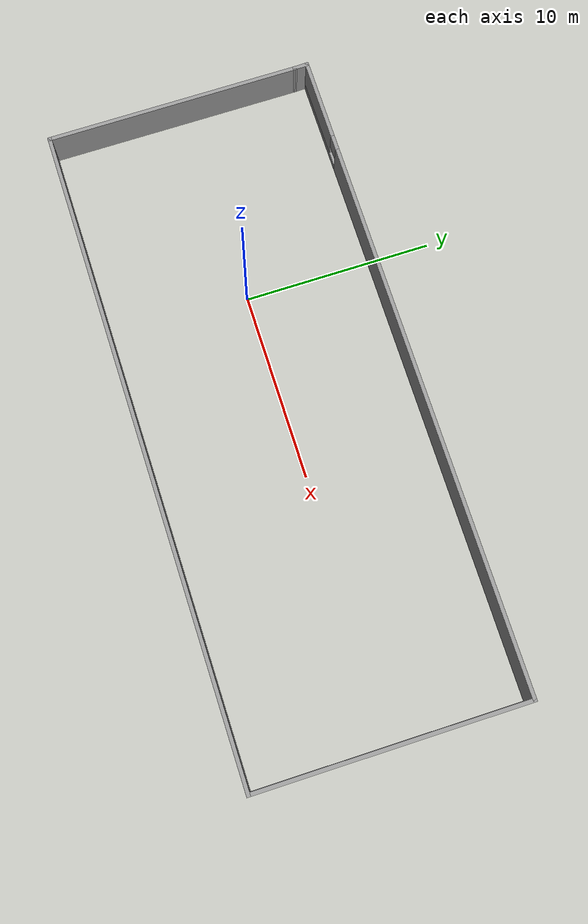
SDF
<?xml version='1.0'?>
<sdf version='1.4'>
  <model name='Walls'>
    <link name='Wall_10'>
      <collision name='Wall_10_Collision'>
        <geometry>
          <box>
            <size>0.888094 0.2 2.5</size>
          </box>
        </geometry>
        <pose>0 0 1.25 0 -0 0</pose>
      </collision>
      <visual name='Wall_10_Visual'>
        <pose>0 0 1.25 0 -0 0</pose>
        <geometry>
          <box>
            <size>0.888094 0.2 2.5</size>
          </box>
        </geometry>
        <material>
          <script>
            <uri>file://media/materials/scripts/gazebo.material</uri>
            <name>Gazebo/Grey</name>
          </script>
        </material>
      </visual>
      <velocity_decay>
        <linear>0</linear>
        <angular>0</angular>
      </velocity_decay>
      <pose>-10.7789 6.40738 0 0 0 -1.53892</pose>
    </link>
    <link name='Wall_6'>
      <collision name='Wall_6_Collision'>
        <geometry>
          <box>
            <size>13.6717 0.2 2.5</size>
          </box>
        </geometry>
        <pose>0 0 1.25 0 -0 0</pose>
      </collision>
      <visual name='Wall_6_Visual'>
        <pose>0 0 1.25 0 -0 0</pose>
        <geometry>
          <box>
            <size>13.6717 0.2 2.5</size>
          </box>
        </geometry>
        <material>
          <script>
            <uri>file://media/materials/scripts/gazebo.material</uri>
            <name>Gazebo/Grey</name>
          </script>
        </material>
      </visual>
      <velocity_decay>
        <linear>0</linear>
        <angular>0</angular>
      </velocity_decay>
      <pose>-10.768 -0.672343 0 0 0 -1.5708</pose>
    </link>
    <link name='Wall_7'>
      <collision name='Wall_7_Collision'>
        <geometry>
          <box>
            <size>34.9109 0.2 2.5</size>
          </box>
        </geometry>
        <pose>0 0 1.25 0 -0 0</pose>
      </collision>
      <visual name='Wall_7_Visual'>
        <pose>0 0 1.25 0 -0 0</pose>
        <geometry>
          <box>
            <size>34.9109 0.2 2.5</size>
          </box>
        </geometry>
        <material>
          <script>
            <uri>file://media/materials/scripts/gazebo.material</uri>
            <name>Gazebo/Grey</name>
          </script>
        </material>
      </visual>
      <velocity_decay>
        <linear>0</linear>
        <angular>0</angular>
      </velocity_decay>
      <pose>6.58746 -7.4082 0 0 -0 0</pose>
    </link>
    <link name='Wall_8'>
      <collision name='Wall_8_Collision'>
        <geometry>
          <box>
            <size>14.3595 0.2 2.5</size>
          </box>
        </geometry>
        <pose>0 0 1.25 0 -0 0</pose>
      </collision>
      <visual name='Wall_8_Visual'>
        <pose>0 0 1.25 0 -0 0</pose>
        <geometry>
          <box>
            <size>14.3595 0.2 2.5</size>
          </box>
        </geometry>
        <material>
          <script>
            <uri>file://media/materials/scripts/gazebo.material</uri>
            <name>Gazebo/Grey</name>
          </script>
        </material>
      </visual>
      <velocity_decay>
        <linear>0</linear>
        <angular>0</angular>
      </velocity_decay>
      <pose>23.9429 -0.32847 0 0 -0 1.5708</pose>
    </link>
    <link name='Wall_9'>
      <pose>6.5765 6.75126 0 0 -0 3.14159</pose>
      <visual name='Wall_9_Visual_0'>
        <pose>-2.62074 0 1.25 0 -0 0</pose>
        <geometry>
          <box>
            <size>29.6913 0.2 2.5</size>
          </box>
        </geometry>
        <material>
          <script>
            <uri>file://media/materials/scripts/gazebo.material</uri>
            <name>Gazebo/Grey</name>
          </script>
        </material>
      </visual>
      <collision name='Wall_9_Collision_0'>
        <geometry>
          <box>
            <size>29.6913 0.2 2.5</size>
          </box>
        </geometry>
        <pose>-2.62074 0 1.25 0 -0 0</pose>
      </collision>
      <visual name='Wall_9_Visual_1'>
        <pose>14.8457 0 0.25 0 -0 0</pose>
        <geometry>
          <box>
            <size>5.24148 0.2 0.5</size>
          </box>
        </geometry>
        <material>
          <script>
            <uri>file://media/materials/scripts/gazebo.material</uri>
            <name>Gazebo/Grey</name>
          </script>
        </material>
      </visual>
      <collision name='Wall_9_Collision_1'>
        <geometry>
          <box>
            <size>5.24148 0.2 0.5</size>
          </box>
        </geometry>
        <pose>14.8457 0 0.25 0 -0 0</pose>
      </collision>
      <visual name='Wall_9_Visual_2'>
        <pose>15.2457 0 1.5 0 -0 0</pose>
        <geometry>
          <box>
            <size>4.44149 0.2 2</size>
          </box>
        </geometry>
        <material>
          <script>
            <uri>file://media/materials/scripts/gazebo.material</uri>
            <name>Gazebo/Grey</name>
          </script>
        </material>
      </visual>
      <collision name='Wall_9_Collision_2'>
        <geometry>
          <box>
            <size>4.44149 0.2 2</size>
          </box>
        </geometry>
        <pose>15.2457 0 1.5 0 -0 0</pose>
      </collision>
      <visual name='Wall_9_Visual_3'>
        <pose>12.6249 0 1.9 0 -0 0</pose>
        <geometry>
          <box>
            <size>0.8 0.2 1.2</size>
          </box>
        </geometry>
        <material>
          <script>
            <uri>file://media/materials/scripts/gazebo.material</uri>
            <name>Gazebo/Grey</name>
          </script>
        </material>
      </visual>
      <collision name='Wall_9_Collision_3'>
        <geometry>
          <box>
            <size>0.8 0.2 1.2</size>
          </box>
        </geometry>
        <pose>12.6249 0 1.9 0 -0 0</pose>
      </collision>
    </link>
    <static>1</static>
  </model>
</sdf>
